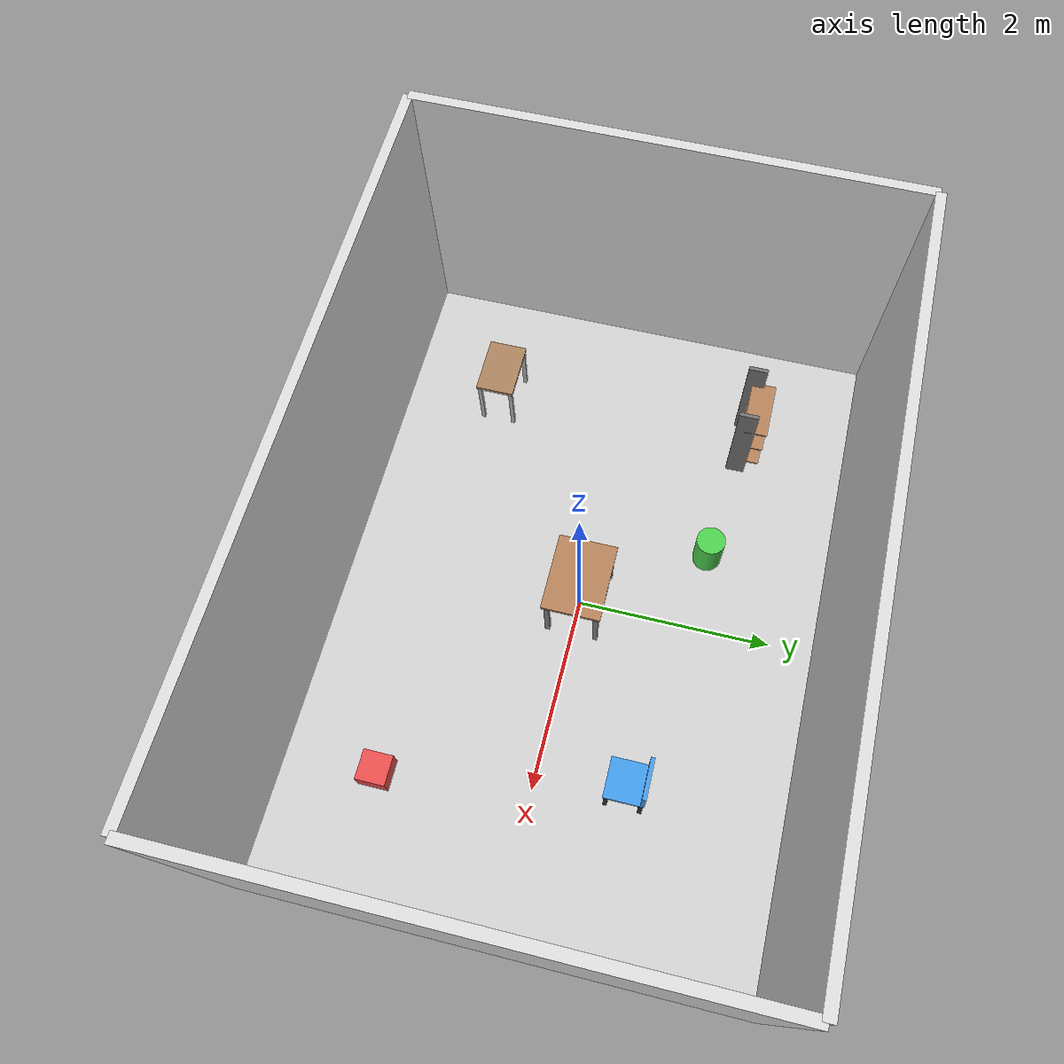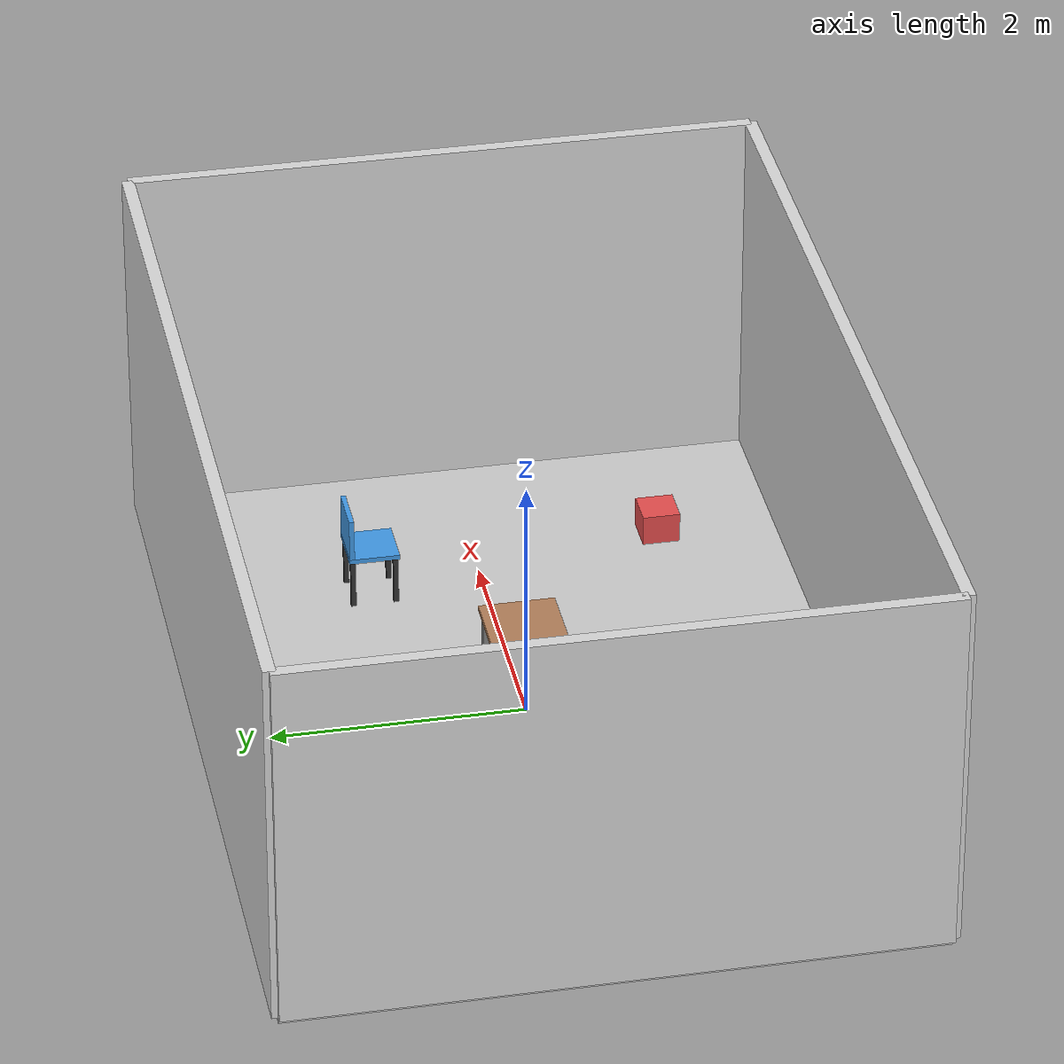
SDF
<?xml version="1.0"?>
<sdf version="1.9">
  <world name="room_world">

    <plugin filename="libignition-gazebo-sensors-system.so"
            name="ignition::gazebo::systems::Sensors">
      <render_engine>ogre2</render_engine>
    </plugin>

    <gravity>0 0 -9.81</gravity>

    <ambient_light>0.6 0.6 0.6 1</ambient_light>
    <light name="sun" type="directional">
      <pose>0 0 10 0 0 0</pose>
      <cast_shadows>false</cast_shadows>
      <diffuse>1 1 1 1</diffuse>
      <specular>0.1 0.1 0.1 1</specular>
      <direction>-0.5 -0.5 -1</direction>
      <intensity>3.0</intensity>
    </light>

    <!-- 7 x 5 m room -->
    <model name="room">
      <static>true</static>

      <!-- floor (7 x 5 x 0.1) -->
      <link name="floor">
        <pose>0 0 0 0 0 0</pose>
        <collision name="col">
          <geometry><box><size>7 5 0.1</size></box></geometry>
        </collision>
        <visual name="vis">
          <geometry><box><size>7 5 0.1</size></box></geometry>
          <material>
            <ambient>0.7 0.7 0.7 1</ambient>
            <diffuse>0.8 0.8 0.8 1</diffuse>
          </material>
          <double_sided>true</double_sided>
        </visual>
      </link>

      <!-- walls height 3.0 m -->
      <link name="wall_x+">
        <pose>3.5 0 1.5 0 0 0</pose>
        <collision name="col"><geometry><box><size>0.1 5 3</size></box></geometry></collision>
        <visual name="vis">
          <geometry><box><size>0.1 5 3</size></box></geometry>
          <material><ambient>0.75 0.75 0.75 1</ambient><diffuse>0.85 0.85 0.85 1</diffuse></material>
          <double_sided>true</double_sided>
        </visual>
      </link>
      <link name="wall_x-">
        <pose>-3.5 0 1.5 0 0 0</pose>
        <collision name="col"><geometry><box><size>0.1 5 3</size></box></geometry></collision>
        <visual name="vis">
          <geometry><box><size>0.1 5 3</size></box></geometry>
          <material><ambient>0.75 0.75 0.75 1</ambient><diffuse>0.85 0.85 0.85 1</diffuse></material>
          <double_sided>true</double_sided>
        </visual>
      </link>
      <link name="wall_y+">
        <pose>0 2.5 1.5 0 0 0</pose>
        <collision name="col"><geometry><box><size>7 0.1 3</size></box></geometry></collision>
        <visual name="vis">
          <geometry><box><size>7 0.1 3</size></box></geometry>
          <material><ambient>0.75 0.75 0.75 1</ambient><diffuse>0.85 0.85 0.85 1</diffuse></material>
          <double_sided>true</double_sided>
        </visual>
      </link>
      <link name="wall_y-">
        <pose>0 -2.5 1.5 0 0 0</pose>
        <collision name="col"><geometry><box><size>7 0.1 3</size></box></geometry></collision>
        <visual name="vis">
          <geometry><box><size>7 0.1 3</size></box></geometry>
          <material><ambient>0.75 0.75 0.75 1</ambient><diffuse>0.85 0.85 0.85 1</diffuse></material>
          <double_sided>true</double_sided>
        </visual>
      </link>
    </model>

    <!-- Simple table at the center (single link with multiple parts) -->
    <model name="table_center">
      <static>true</static>
      <link name="table">

        <!-- dimensions -->
        <!-- plate: 0.8 x 0.6 x 0.04, centered at z = 0.72 (top ~0.74 m) -->
        <!-- legs: 0.05 x 0.05 x 0.7, leg centers at z = 0.35 -->
        <!-- leg XY offsets: +/-0.35 (x) and +/-0.25 (y) -->

        <!-- plate -->
        <collision name="plate_col">
          <pose>0 0 0.72 0 0 0</pose>
          <geometry><box><size>0.8 0.6 0.04</size></box></geometry>
        </collision>
        <visual name="plate_vis">
          <pose>0 0 0.72 0 0 0</pose>
          <geometry><box><size>0.8 0.6 0.04</size></box></geometry>
          <material>
            <ambient>0.6 0.45 0.3 1</ambient>
            <diffuse>0.7 0.5 0.35 1</diffuse>
          </material>
        </visual>

        <!-- leg FL (+x +y) -->
        <collision name="leg_fl_col">
          <pose>0.35 0.25 0.35 0 0 0</pose>
          <geometry><box><size>0.05 0.05 0.7</size></box></geometry>
        </collision>
        <visual name="leg_fl_vis">
          <pose>0.35 0.25 0.35 0 0 0</pose>
          <geometry><box><size>0.05 0.05 0.7</size></box></geometry>
          <material><ambient>0.4 0.4 0.4 1</ambient><diffuse>0.5 0.5 0.5 1</diffuse></material>
        </visual>

        <!-- leg FR (+x -y) -->
        <collision name="leg_fr_col">
          <pose>0.35 -0.25 0.35 0 0 0</pose>
          <geometry><box><size>0.05 0.05 0.7</size></box></geometry>
        </collision>
        <visual name="leg_fr_vis">
          <pose>0.35 -0.25 0.35 0 0 0</pose>
          <geometry><box><size>0.05 0.05 0.7</size></box></geometry>
          <material><ambient>0.4 0.4 0.4 1</ambient><diffuse>0.5 0.5 0.5 1</diffuse></material>
        </visual>

        <!-- leg RL (-x +y) -->
        <collision name="leg_rl_col">
          <pose>-0.35 0.25 0.35 0 0 0</pose>
          <geometry><box><size>0.05 0.05 0.7</size></box></geometry>
        </collision>
        <visual name="leg_rl_vis">
          <pose>-0.35 0.25 0.35 0 0 0</pose>
          <geometry><box><size>0.05 0.05 0.7</size></box></geometry>
          <material><ambient>0.4 0.4 0.4 1</ambient><diffuse>0.5 0.5 0.5 1</diffuse></material>
        </visual>

        <!-- leg RR (-x -y) -->
        <collision name="leg_rr_col">
          <pose>-0.35 -0.25 0.35 0 0 0</pose>
          <geometry><box><size>0.05 0.05 0.7</size></box></geometry>
        </collision>
        <visual name="leg_rr_vis">
          <pose>-0.35 -0.25 0.35 0 0 0</pose>
          <geometry><box><size>0.05 0.05 0.7</size></box></geometry>
          <material><ambient>0.4 0.4 0.4 1</ambient><diffuse>0.5 0.5 0.5 1</diffuse></material>
        </visual>

      </link>
    </model>

        <!-- Small chair -->
    <model name="chair_small">
      <static>true</static>
      <pose>1.8 0.9 0 0 0 0</pose>
      <link name="chair">
        <!-- seat -->
        <collision name="seat_col">
          <pose>0 0 0.47 0 0 0</pose>
          <geometry><box><size>0.40 0.40 0.04</size></box></geometry>
        </collision>
        <visual name="seat_vis">
          <pose>0 0 0.47 0 0 0</pose>
          <geometry><box><size>0.40 0.40 0.04</size></box></geometry>
          <material><ambient>0.2 0.5 0.8 1</ambient><diffuse>0.25 0.6 0.9 1</diffuse></material>
        </visual>
        <!-- backrest -->
        <collision name="back_col">
          <pose>0 0.18 0.665 0 0 0</pose>
          <geometry><box><size>0.40 0.04 0.35</size></box></geometry>
        </collision>
        <visual name="back_vis">
          <pose>0 0.18 0.665 0 0 0</pose>
          <geometry><box><size>0.40 0.04 0.35</size></box></geometry>
          <material><ambient>0.2 0.5 0.8 1</ambient><diffuse>0.25 0.6 0.9 1</diffuse></material>
        </visual>
        <!-- legs (0.45 m) -->
        <collision name="leg_fl_col"><pose> 0.17  0.17 0.225 0 0 0</pose><geometry><box><size>0.04 0.04 0.45</size></box></geometry></collision>
        <collision name="leg_fr_col"><pose> 0.17 -0.17 0.225 0 0 0</pose><geometry><box><size>0.04 0.04 0.45</size></box></geometry></collision>
        <collision name="leg_rl_col"><pose>-0.17  0.17 0.225 0 0 0</pose><geometry><box><size>0.04 0.04 0.45</size></box></geometry></collision>
        <collision name="leg_rr_col"><pose>-0.17 -0.17 0.225 0 0 0</pose><geometry><box><size>0.04 0.04 0.45</size></box></geometry></collision>

        <visual name="leg_fl_vis"><pose> 0.17  0.17 0.225 0 0 0</pose><geometry><box><size>0.04 0.04 0.45</size></box></geometry><material><ambient>0.1 0.1 0.1 1</ambient><diffuse>0.2 0.2 0.2 1</diffuse></material></visual>
        <visual name="leg_fr_vis"><pose> 0.17 -0.17 0.225 0 0 0</pose><geometry><box><size>0.04 0.04 0.45</size></box></geometry><material><ambient>0.1 0.1 0.1 1</ambient><diffuse>0.2 0.2 0.2 1</diffuse></material></visual>
        <visual name="leg_rl_vis"><pose>-0.17  0.17 0.225 0 0 0</pose><geometry><box><size>0.04 0.04 0.45</size></box></geometry><material><ambient>0.1 0.1 0.1 1</ambient><diffuse>0.2 0.2 0.2 1</diffuse></material></visual>
        <visual name="leg_rr_vis"><pose>-0.17 -0.17 0.225 0 0 0</pose><geometry><box><size>0.04 0.04 0.45</size></box></geometry><material><ambient>0.1 0.1 0.1 1</ambient><diffuse>0.2 0.2 0.2 1</diffuse></material></visual>
      </link>
    </model>

    <!-- Second small table -->
    <model name="table_side">
      <static>true</static>
      <pose>-2.2 -1.4 0 0 0 0</pose>
      <link name="table">
        <collision name="plate_col"><pose>0 0 0.66 0 0 0</pose><geometry><box><size>0.60 0.40 0.04</size></box></geometry></collision>
        <visual    name="plate_vis"><pose>0 0 0.66 0 0 0</pose><geometry><box><size>0.60 0.40 0.04</size></box></geometry><material><ambient>0.55 0.42 0.3 1</ambient><diffuse>0.65 0.5 0.36 1</diffuse></material></visual>

        <!-- 0.62 m legs -->
        <collision name="leg_fl_col"><pose> 0.27  0.17 0.31 0 0 0</pose><geometry><box><size>0.04 0.04 0.62</size></box></geometry></collision>
        <collision name="leg_fr_col"><pose> 0.27 -0.17 0.31 0 0 0</pose><geometry><box><size>0.04 0.04 0.62</size></box></geometry></collision>
        <collision name="leg_rl_col"><pose>-0.27  0.17 0.31 0 0 0</pose><geometry><box><size>0.04 0.04 0.62</size></box></geometry></collision>
        <collision name="leg_rr_col"><pose>-0.27 -0.17 0.31 0 0 0</pose><geometry><box><size>0.04 0.04 0.62</size></box></geometry></collision>

        <visual name="leg_fl_vis"><pose> 0.27  0.17 0.31 0 0 0</pose><geometry><box><size>0.04 0.04 0.62</size></box></geometry></visual>
        <visual name="leg_fr_vis"><pose> 0.27 -0.17 0.31 0 0 0</pose><geometry><box><size>0.04 0.04 0.62</size></box></geometry></visual>
        <visual name="leg_rl_vis"><pose>-0.27  0.17 0.31 0 0 0</pose><geometry><box><size>0.04 0.04 0.62</size></box></geometry></visual>
        <visual name="leg_rr_vis"><pose>-0.27 -0.17 0.31 0 0 0</pose><geometry><box><size>0.04 0.04 0.62</size></box></geometry></visual>
      </link>
    </model>

    <!-- Freestanding shelf -->
    <model name="shelf_free">
      <static>true</static>
      <pose>-2.2 1.4 0 0 0 0</pose>
      <link name="shelf">
        <!-- uprights (1.2 m) -->
        <collision name="upr_l_col"><pose>-0.28 -0.10 0.60 0 0 0</pose><geometry><box><size>0.04 0.20 1.20</size></box></geometry></collision>
        <collision name="upr_r_col"><pose> 0.28 -0.10 0.60 0 0 0</pose><geometry><box><size>0.04 0.20 1.20</size></box></geometry></collision>
        <visual name="upr_l_vis"><pose>-0.28 -0.10 0.60 0 0 0</pose><geometry><box><size>0.04 0.20 1.20</size></box></geometry><material><ambient>0.35 0.35 0.35 1</ambient><diffuse>0.45 0.45 0.45 1</diffuse></material></visual>
        <visual name="upr_r_vis"><pose> 0.28 -0.10 0.60 0 0 0</pose><geometry><box><size>0.04 0.20 1.20</size></box></geometry><material><ambient>0.35 0.35 0.35 1</ambient><diffuse>0.45 0.45 0.45 1</diffuse></material></visual>

        <!-- three shelves (0.6 x 0.25 x 0.02) -->
        <collision name="shelf1_col"><pose>0 0 0.30 0 0 0</pose><geometry><box><size>0.60 0.25 0.02</size></box></geometry></collision>
        <collision name="shelf2_col"><pose>0 0 0.60 0 0 0</pose><geometry><box><size>0.60 0.25 0.02</size></box></geometry></collision>
        <collision name="shelf3_col"><pose>0 0 0.90 0 0 0</pose><geometry><box><size>0.60 0.25 0.02</size></box></geometry></collision>

        <visual name="shelf1_vis"><pose>0 0 0.30 0 0 0</pose><geometry><box><size>0.60 0.25 0.02</size></box></geometry><material><ambient>0.6 0.45 0.3 1</ambient><diffuse>0.7 0.5 0.35 1</diffuse></material></visual>
        <visual name="shelf2_vis"><pose>0 0 0.60 0 0 0</pose><geometry><box><size>0.60 0.25 0.02</size></box></geometry><material><ambient>0.6 0.45 0.3 1</ambient><diffuse>0.7 0.5 0.35 1</diffuse></material></visual>
        <visual name="shelf3_vis"><pose>0 0 0.90 0 0 0</pose><geometry><box><size>0.60 0.25 0.02</size></box></geometry><material><ambient>0.6 0.45 0.3 1</ambient><diffuse>0.7 0.5 0.35 1</diffuse></material></visual>
      </link>
    </model>

    <!-- A couple of small standalone props -->
    <model name="crate_box">
      <static>true</static>
      <pose>2.2 -1.5 0 0 0 0</pose>
      <link name="box">
        <collision name="col"><pose>0 0 0.15 0 0 0</pose><geometry><box><size>0.30 0.30 0.30</size></box></geometry></collision>
        <visual name="vis"><pose>0 0 0.15 0 0 0</pose><geometry><box><size>0.30 0.30 0.30</size></box></geometry><material><ambient>0.8 0.2 0.2 1</ambient><diffuse>0.9 0.3 0.3 1</diffuse></material></visual>
      </link>
    </model>

    <model name="trash_can">
      <static>true</static>
      <pose>-0.8 1.2 0 0 0 0</pose>
      <link name="can">
        <collision name="col"><pose>0 0 0.25 0 0 0</pose><geometry><cylinder><radius>0.15</radius><length>0.50</length></cylinder></geometry></collision>
        <visual name="vis"><pose>0 0 0.25 0 0 0</pose><geometry><cylinder><radius>0.15</radius><length>0.50</length></cylinder></geometry><material><ambient>0.2 0.6 0.2 1</ambient><diffuse>0.3 0.8 0.3 1</diffuse></material></visual>
      </link>
    </model>

    <!-- Camera rig 1 (narrower room => move slightly in from wall) -->
    <model name="cam1">
      <static>true</static>
      <pose>3.4 0 1.8 0 0.523599 3.14159</pose>
      <link name="cam_link">
        <sensor name="cam1_rgbd" type="rgbd_camera">
          <always_on>true</always_on>
          <update_rate>15</update_rate>
          <visualize>true</visualize>
          <topic>/cam1/rgbd</topic>
          <camera>
            <horizontal_fov>1.3962634</horizontal_fov>
            <image><width>640</width><height>480</height><format>R8G8B8</format></image>
            <clip><near>0.2</near><far>10.0</far></clip>
          </camera>
        </sensor>
      </link>
    </model>

    <!-- Camera rig 2 -->
    <model name="cam2">
      <static>true</static>
      <pose>0 -2.4 1.8 0 0.523599 1.5708</pose>
      <link name="cam_link">
        <sensor name="cam2_rgbd" type="rgbd_camera">
          <always_on>true</always_on>
          <update_rate>15</update_rate>
          <visualize>true</visualize>
          <topic>/cam2/rgbd</topic>
          <camera>
            <horizontal_fov>1.3962634</horizontal_fov>
            <image><width>640</width><height>480</height><format>R8G8B8</format></image>
            <clip><near>0.2</near><far>10.0</far></clip>
          </camera>
        </sensor>
      </link>
    </model>

  </world>
</sdf>
